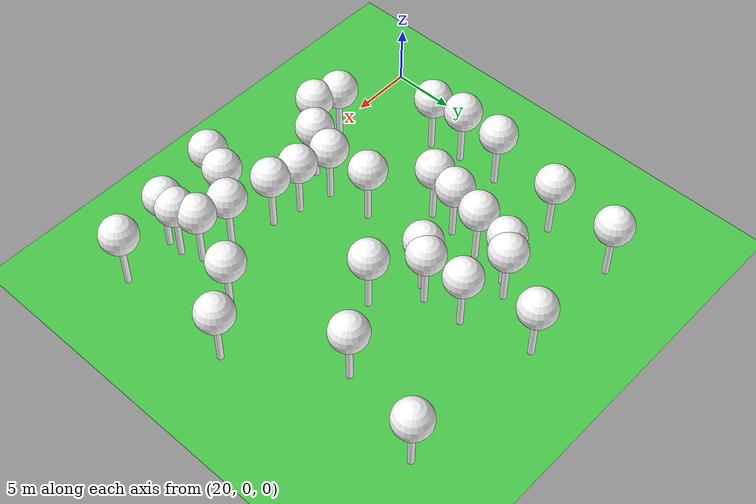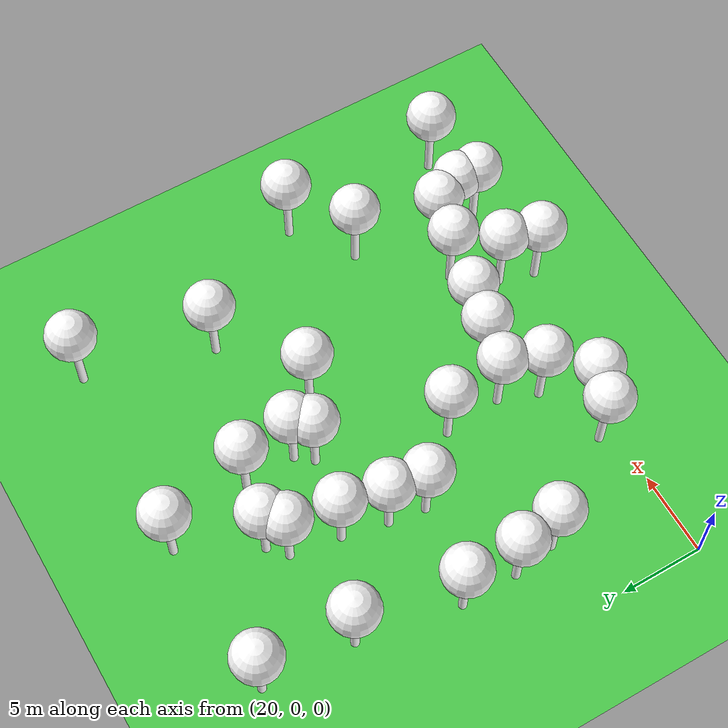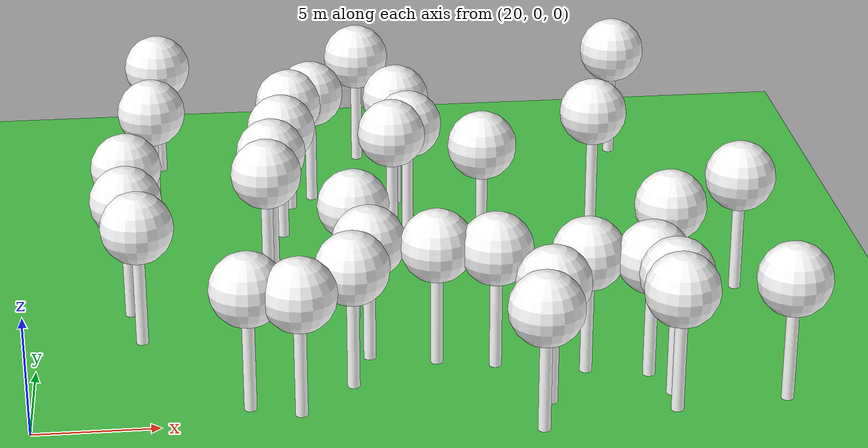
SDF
<sdf version="1.8">
 <world name="forest_world">
  <model name="tree_simple499">
   <static>1</static>
   <link name="link">
    <pose>0 0 0.1 0 -0 0</pose>
    <collision name="collision_trunk">
     <pose>0 0 2 0 -0 0</pose>
     <geometry><cylinder><radius>0.25</radius><length>4</length></cylinder></geometry>
    </collision>
    <collision name="collision_treetop">
     <pose>0 0 5.2 0 -0 0</pose>
     <geometry><sphere><radius>1.5</radius></sphere></geometry>
    </collision>
    <visual name="trunk_499">
     <pose>0 0 2 0 -0 0</pose>
     <geometry><cylinder><radius>0.25</radius><length>4</length></cylinder></geometry>
     <material>
      <ambient>0.5 0.5 0.5 1</ambient>
      <diffuse>1.0 1.0 1.0 1</diffuse>
      <specular>0.0 0.0 0.0 1</specular>
      <pbr>
       <metal>
        <albedo_map>file://textures/tree_simple_trunk.jpg</albedo_map>
        <metalness>0.0</metalness>
        <roughness>0.8</roughness>
       </metal>
      </pbr>
     </material>
    </visual>
    <visual name="treetop_499">
     <pose>0 0 5.2 0 -0 0</pose>
     <geometry><sphere><radius>1.5</radius></sphere></geometry>
     <material>
      <ambient>0.5 0.5 0.5 1</ambient>
      <diffuse>1.0 1.0 1.0 1</diffuse>
      <specular>0.0 0.0 0.0 1</specular>
      <pbr>
       <metal>
        <albedo_map>file://textures/tree_simple_treetop.jpg</albedo_map>
        <metalness>0.0</metalness>
        <roughness>0.9</roughness>
       </metal>
      </pbr>
     </material>
    </visual>
   </link>
   <pose>49.5772894431 -0.301033806291 0 0 -0 0</pose>
  </model>
  <model name="tree_simple490">
   <static>1</static>
   <link name="link">
    <pose>0 0 0.1 0 -0 0</pose>
    <collision name="collision_trunk">
     <pose>0 0 2 0 -0 0</pose>
     <geometry><cylinder><radius>0.25</radius><length>4</length></cylinder></geometry>
    </collision>
    <collision name="collision_treetop">
     <pose>0 0 5.2 0 -0 0</pose>
     <geometry><sphere><radius>1.5</radius></sphere></geometry>
    </collision>
    <visual name="trunk_490">
     <pose>0 0 2 0 -0 0</pose>
     <geometry><cylinder><radius>0.25</radius><length>4</length></cylinder></geometry>
     <material>
      <ambient>0.5 0.5 0.5 1</ambient>
      <diffuse>1.0 1.0 1.0 1</diffuse>
      <specular>0.0 0.0 0.0 1</specular>
      <pbr>
       <metal>
        <albedo_map>file://textures/tree_simple_trunk.jpg</albedo_map>
        <metalness>0.0</metalness>
        <roughness>0.8</roughness>
       </metal>
      </pbr>
     </material>
    </visual>
    <visual name="treetop_490">
     <pose>0 0 5.2 0 -0 0</pose>
     <geometry><sphere><radius>1.5</radius></sphere></geometry>
     <material>
      <ambient>0.5 0.5 0.5 1</ambient>
      <diffuse>1.0 1.0 1.0 1</diffuse>
      <specular>0.0 0.0 0.0 1</specular>
      <pbr>
       <metal>
        <albedo_map>file://textures/tree_simple_treetop.jpg</albedo_map>
        <metalness>0.0</metalness>
        <roughness>0.9</roughness>
       </metal>
      </pbr>
     </material>
    </visual>
   </link>
   <pose>28.486302093 0.994684244644 0 0 -0 0</pose>
  </model>
  <model name="tree_simple487">
   <static>1</static>
   <link name="link">
    <pose>0 0 0.1 0 -0 0</pose>
    <collision name="collision_trunk">
     <pose>0 0 2 0 -0 0</pose>
     <geometry><cylinder><radius>0.25</radius><length>4</length></cylinder></geometry>
    </collision>
    <collision name="collision_treetop">
     <pose>0 0 5.2 0 -0 0</pose>
     <geometry><sphere><radius>1.5</radius></sphere></geometry>
    </collision>
    <visual name="trunk_487">
     <pose>0 0 2 0 -0 0</pose>
     <geometry><cylinder><radius>0.25</radius><length>4</length></cylinder></geometry>
     <material>
      <ambient>0.5 0.5 0.5 1</ambient>
      <diffuse>1.0 1.0 1.0 1</diffuse>
      <specular>0.0 0.0 0.0 1</specular>
      <pbr>
       <metal>
        <albedo_map>file://textures/tree_simple_trunk.jpg</albedo_map>
        <metalness>0.0</metalness>
        <roughness>0.8</roughness>
       </metal>
      </pbr>
     </material>
    </visual>
    <visual name="treetop_487">
     <pose>0 0 5.2 0 -0 0</pose>
     <geometry><sphere><radius>1.5</radius></sphere></geometry>
     <material>
      <ambient>0.5 0.5 0.5 1</ambient>
      <diffuse>1.0 1.0 1.0 1</diffuse>
      <specular>0.0 0.0 0.0 1</specular>
      <pbr>
       <metal>
        <albedo_map>file://textures/tree_simple_treetop.jpg</albedo_map>
        <metalness>0.0</metalness>
        <roughness>0.9</roughness>
       </metal>
      </pbr>
     </material>
    </visual>
   </link>
   <pose>33.1280168764 8.35331864597 0 0 -0 0</pose>
  </model>
  <model name="tree_simple485">
   <static>1</static>
   <link name="link">
    <pose>0 0 0.1 0 -0 0</pose>
    <collision name="collision_trunk">
     <pose>0 0 2 0 -0 0</pose>
     <geometry><cylinder><radius>0.25</radius><length>4</length></cylinder></geometry>
    </collision>
    <collision name="collision_treetop">
     <pose>0 0 5.2 0 -0 0</pose>
     <geometry><sphere><radius>1.5</radius></sphere></geometry>
    </collision>
    <visual name="trunk_485">
     <pose>0 0 2 0 -0 0</pose>
     <geometry><cylinder><radius>0.25</radius><length>4</length></cylinder></geometry>
     <material>
      <ambient>0.5 0.5 0.5 1</ambient>
      <diffuse>1.0 1.0 1.0 1</diffuse>
      <specular>0.0 0.0 0.0 1</specular>
      <pbr>
       <metal>
        <albedo_map>file://textures/tree_simple_trunk.jpg</albedo_map>
        <metalness>0.0</metalness>
        <roughness>0.8</roughness>
       </metal>
      </pbr>
     </material>
    </visual>
    <visual name="treetop_485">
     <pose>0 0 5.2 0 -0 0</pose>
     <geometry><sphere><radius>1.5</radius></sphere></geometry>
     <material>
      <ambient>0.5 0.5 0.5 1</ambient>
      <diffuse>1.0 1.0 1.0 1</diffuse>
      <specular>0.0 0.0 0.0 1</specular>
      <pbr>
       <metal>
        <albedo_map>file://textures/tree_simple_treetop.jpg</albedo_map>
        <metalness>0.0</metalness>
        <roughness>0.9</roughness>
       </metal>
      </pbr>
     </material>
    </visual>
   </link>
   <pose>38.4673421664 3.60529435805 0 0 -0 0</pose>
  </model>
  <model name="tree_simple387">
   <static>1</static>
   <link name="link">
    <pose>0 0 0.1 0 -0 0</pose>
    <collision name="collision_trunk">
     <pose>0 0 2 0 -0 0</pose>
     <geometry><cylinder><radius>0.25</radius><length>4</length></cylinder></geometry>
    </collision>
    <collision name="collision_treetop">
     <pose>0 0 5.2 0 -0 0</pose>
     <geometry><sphere><radius>1.5</radius></sphere></geometry>
    </collision>
    <visual name="trunk_387">
     <pose>0 0 2 0 -0 0</pose>
     <geometry><cylinder><radius>0.25</radius><length>4</length></cylinder></geometry>
     <material>
      <ambient>0.5 0.5 0.5 1</ambient>
      <diffuse>1.0 1.0 1.0 1</diffuse>
      <specular>0.0 0.0 0.0 1</specular>
      <pbr>
       <metal>
        <albedo_map>file://textures/tree_simple_trunk.jpg</albedo_map>
        <metalness>0.0</metalness>
        <roughness>0.8</roughness>
       </metal>
      </pbr>
     </material>
    </visual>
    <visual name="treetop_387">
     <pose>0 0 5.2 0 -0 0</pose>
     <geometry><sphere><radius>1.5</radius></sphere></geometry>
     <material>
      <ambient>0.5 0.5 0.5 1</ambient>
      <diffuse>1.0 1.0 1.0 1</diffuse>
      <specular>0.0 0.0 0.0 1</specular>
      <pbr>
       <metal>
        <albedo_map>file://textures/tree_simple_treetop.jpg</albedo_map>
        <metalness>0.0</metalness>
        <roughness>0.9</roughness>
       </metal>
      </pbr>
     </material>
    </visual>
   </link>
   <pose>25.1584680938 24.780687948 0 0 -0 0</pose>
  </model>
  <model name="tree_simple378">
   <static>1</static>
   <link name="link">
    <pose>0 0 0.1 0 -0 0</pose>
    <collision name="collision_trunk">
     <pose>0 0 2 0 -0 0</pose>
     <geometry><cylinder><radius>0.25</radius><length>4</length></cylinder></geometry>
    </collision>
    <collision name="collision_treetop">
     <pose>0 0 5.2 0 -0 0</pose>
     <geometry><sphere><radius>1.5</radius></sphere></geometry>
    </collision>
    <visual name="trunk_378">
     <pose>0 0 2 0 -0 0</pose>
     <geometry><cylinder><radius>0.25</radius><length>4</length></cylinder></geometry>
     <material>
      <ambient>0.5 0.5 0.5 1</ambient>
      <diffuse>1.0 1.0 1.0 1</diffuse>
      <specular>0.0 0.0 0.0 1</specular>
      <pbr>
       <metal>
        <albedo_map>file://textures/tree_simple_trunk.jpg</albedo_map>
        <metalness>0.0</metalness>
        <roughness>0.8</roughness>
       </metal>
      </pbr>
     </material>
    </visual>
    <visual name="treetop_378">
     <pose>0 0 5.2 0 -0 0</pose>
     <geometry><sphere><radius>1.5</radius></sphere></geometry>
     <material>
      <ambient>0.5 0.5 0.5 1</ambient>
      <diffuse>1.0 1.0 1.0 1</diffuse>
      <specular>0.0 0.0 0.0 1</specular>
      <pbr>
       <metal>
        <albedo_map>file://textures/tree_simple_treetop.jpg</albedo_map>
        <metalness>0.0</metalness>
        <roughness>0.9</roughness>
       </metal>
      </pbr>
     </material>
    </visual>
   </link>
   <pose>45.079812121 -0.754391736344 0 0 -0 0</pose>
  </model>
  <model name="tree_simple363">
   <static>1</static>
   <link name="link">
    <pose>0 0 0.1 0 -0 0</pose>
    <collision name="collision_trunk">
     <pose>0 0 2 0 -0 0</pose>
     <geometry><cylinder><radius>0.25</radius><length>4</length></cylinder></geometry>
    </collision>
    <collision name="collision_treetop">
     <pose>0 0 5.2 0 -0 0</pose>
     <geometry><sphere><radius>1.5</radius></sphere></geometry>
    </collision>
    <visual name="trunk_363">
     <pose>0 0 2 0 -0 0</pose>
     <geometry><cylinder><radius>0.25</radius><length>4</length></cylinder></geometry>
     <material>
      <ambient>0.5 0.5 0.5 1</ambient>
      <diffuse>1.0 1.0 1.0 1</diffuse>
      <specular>0.0 0.0 0.0 1</specular>
      <pbr>
       <metal>
        <albedo_map>file://textures/tree_simple_trunk.jpg</albedo_map>
        <metalness>0.0</metalness>
        <roughness>0.8</roughness>
       </metal>
      </pbr>
     </material>
    </visual>
    <visual name="treetop_363">
     <pose>0 0 5.2 0 -0 0</pose>
     <geometry><sphere><radius>1.5</radius></sphere></geometry>
     <material>
      <ambient>0.5 0.5 0.5 1</ambient>
      <diffuse>1.0 1.0 1.0 1</diffuse>
      <specular>0.0 0.0 0.0 1</specular>
      <pbr>
       <metal>
        <albedo_map>file://textures/tree_simple_treetop.jpg</albedo_map>
        <metalness>0.0</metalness>
        <roughness>0.9</roughness>
       </metal>
      </pbr>
     </material>
    </visual>
   </link>
   <pose>45.144398785 0.58220424318 0 0 -0 0</pose>
  </model>
  <model name="tree_simple354">
   <static>1</static>
   <link name="link">
    <pose>0 0 0.1 0 -0 0</pose>
    <collision name="collision_trunk">
     <pose>0 0 2 0 -0 0</pose>
     <geometry><cylinder><radius>0.25</radius><length>4</length></cylinder></geometry>
    </collision>
    <collision name="collision_treetop">
     <pose>0 0 5.2 0 -0 0</pose>
     <geometry><sphere><radius>1.5</radius></sphere></geometry>
    </collision>
    <visual name="trunk_354">
     <pose>0 0 2 0 -0 0</pose>
     <geometry><cylinder><radius>0.25</radius><length>4</length></cylinder></geometry>
     <material>
      <ambient>0.5 0.5 0.5 1</ambient>
      <diffuse>1.0 1.0 1.0 1</diffuse>
      <specular>0.0 0.0 0.0 1</specular>
      <pbr>
       <metal>
        <albedo_map>file://textures/tree_simple_trunk.jpg</albedo_map>
        <metalness>0.0</metalness>
        <roughness>0.8</roughness>
       </metal>
      </pbr>
     </material>
    </visual>
    <visual name="treetop_354">
     <pose>0 0 5.2 0 -0 0</pose>
     <geometry><sphere><radius>1.5</radius></sphere></geometry>
     <material>
      <ambient>0.5 0.5 0.5 1</ambient>
      <diffuse>1.0 1.0 1.0 1</diffuse>
      <specular>0.0 0.0 0.0 1</specular>
      <pbr>
       <metal>
        <albedo_map>file://textures/tree_simple_treetop.jpg</albedo_map>
        <metalness>0.0</metalness>
        <roughness>0.9</roughness>
       </metal>
      </pbr>
     </material>
    </visual>
   </link>
   <pose>32.6407591413 2.42607799047 0 0 -0 0</pose>
  </model>
  <model name="tree_simple335">
   <static>1</static>
   <link name="link">
    <pose>0 0 0.1 0 -0 0</pose>
    <collision name="collision_trunk">
     <pose>0 0 2 0 -0 0</pose>
     <geometry><cylinder><radius>0.25</radius><length>4</length></cylinder></geometry>
    </collision>
    <collision name="collision_treetop">
     <pose>0 0 5.2 0 -0 0</pose>
     <geometry><sphere><radius>1.5</radius></sphere></geometry>
    </collision>
    <visual name="trunk_335">
     <pose>0 0 2 0 -0 0</pose>
     <geometry><cylinder><radius>0.25</radius><length>4</length></cylinder></geometry>
     <material>
      <ambient>0.5 0.5 0.5 1</ambient>
      <diffuse>1.0 1.0 1.0 1</diffuse>
      <specular>0.0 0.0 0.0 1</specular>
      <pbr>
       <metal>
        <albedo_map>file://textures/tree_simple_trunk.jpg</albedo_map>
        <metalness>0.0</metalness>
        <roughness>0.8</roughness>
       </metal>
      </pbr>
     </material>
    </visual>
    <visual name="treetop_335">
     <pose>0 0 5.2 0 -0 0</pose>
     <geometry><sphere><radius>1.5</radius></sphere></geometry>
     <material>
      <ambient>0.5 0.5 0.5 1</ambient>
      <diffuse>1.0 1.0 1.0 1</diffuse>
      <specular>0.0 0.0 0.0 1</specular>
      <pbr>
       <metal>
        <albedo_map>file://textures/tree_simple_treetop.jpg</albedo_map>
        <metalness>0.0</metalness>
        <roughness>0.9</roughness>
       </metal>
      </pbr>
     </material>
    </visual>
   </link>
   <pose>34.5368026381 25.2759033923 0 0 -0 0</pose>
  </model>
  <model name="tree_simple297">
   <static>1</static>
   <link name="link">
    <pose>0 0 0.1 0 -0 0</pose>
    <collision name="collision_trunk">
     <pose>0 0 2 0 -0 0</pose>
     <geometry><cylinder><radius>0.25</radius><length>4</length></cylinder></geometry>
    </collision>
    <collision name="collision_treetop">
     <pose>0 0 5.2 0 -0 0</pose>
     <geometry><sphere><radius>1.5</radius></sphere></geometry>
    </collision>
    <visual name="trunk_297">
     <pose>0 0 2 0 -0 0</pose>
     <geometry><cylinder><radius>0.25</radius><length>4</length></cylinder></geometry>
     <material>
      <ambient>0.5 0.5 0.5 1</ambient>
      <diffuse>1.0 1.0 1.0 1</diffuse>
      <specular>0.0 0.0 0.0 1</specular>
      <pbr>
       <metal>
        <albedo_map>file://textures/tree_simple_trunk.jpg</albedo_map>
        <metalness>0.0</metalness>
        <roughness>0.8</roughness>
       </metal>
      </pbr>
     </material>
    </visual>
    <visual name="treetop_297">
     <pose>0 0 5.2 0 -0 0</pose>
     <geometry><sphere><radius>1.5</radius></sphere></geometry>
     <material>
      <ambient>0.5 0.5 0.5 1</ambient>
      <diffuse>1.0 1.0 1.0 1</diffuse>
      <specular>0.0 0.0 0.0 1</specular>
      <pbr>
       <metal>
        <albedo_map>file://textures/tree_simple_treetop.jpg</albedo_map>
        <metalness>0.0</metalness>
        <roughness>0.9</roughness>
       </metal>
      </pbr>
     </material>
    </visual>
   </link>
   <pose>30.5775161842 16.8175844191 0 0 -0 0</pose>
  </model>
  <model name="tree_simple296">
   <static>1</static>
   <link name="link">
    <pose>0 0 0.1 0 -0 0</pose>
    <collision name="collision_trunk">
     <pose>0 0 2 0 -0 0</pose>
     <geometry><cylinder><radius>0.25</radius><length>4</length></cylinder></geometry>
    </collision>
    <collision name="collision_treetop">
     <pose>0 0 5.2 0 -0 0</pose>
     <geometry><sphere><radius>1.5</radius></sphere></geometry>
    </collision>
    <visual name="trunk_296">
     <pose>0 0 2 0 -0 0</pose>
     <geometry><cylinder><radius>0.25</radius><length>4</length></cylinder></geometry>
     <material>
      <ambient>0.5 0.5 0.5 1</ambient>
      <diffuse>1.0 1.0 1.0 1</diffuse>
      <specular>0.0 0.0 0.0 1</specular>
      <pbr>
       <metal>
        <albedo_map>file://textures/tree_simple_trunk.jpg</albedo_map>
        <metalness>0.0</metalness>
        <roughness>0.8</roughness>
       </metal>
      </pbr>
     </material>
    </visual>
    <visual name="treetop_296">
     <pose>0 0 5.2 0 -0 0</pose>
     <geometry><sphere><radius>1.5</radius></sphere></geometry>
     <material>
      <ambient>0.5 0.5 0.5 1</ambient>
      <diffuse>1.0 1.0 1.0 1</diffuse>
      <specular>0.0 0.0 0.0 1</specular>
      <pbr>
       <metal>
        <albedo_map>file://textures/tree_simple_treetop.jpg</albedo_map>
        <metalness>0.0</metalness>
        <roughness>0.9</roughness>
       </metal>
      </pbr>
     </material>
    </visual>
   </link>
   <pose>44.6267245304 17.3019041373 0 0 -0 0</pose>
  </model>
  <model name="tree_simple283">
   <static>1</static>
   <link name="link">
    <pose>0 0 0.1 0 -0 0</pose>
    <collision name="collision_trunk">
     <pose>0 0 2 0 -0 0</pose>
     <geometry><cylinder><radius>0.25</radius><length>4</length></cylinder></geometry>
    </collision>
    <collision name="collision_treetop">
     <pose>0 0 5.2 0 -0 0</pose>
     <geometry><sphere><radius>1.5</radius></sphere></geometry>
    </collision>
    <visual name="trunk_283">
     <pose>0 0 2 0 -0 0</pose>
     <geometry><cylinder><radius>0.25</radius><length>4</length></cylinder></geometry>
     <material>
      <ambient>0.5 0.5 0.5 1</ambient>
      <diffuse>1.0 1.0 1.0 1</diffuse>
      <specular>0.0 0.0 0.0 1</specular>
      <pbr>
       <metal>
        <albedo_map>file://textures/tree_simple_trunk.jpg</albedo_map>
        <metalness>0.0</metalness>
        <roughness>0.8</roughness>
       </metal>
      </pbr>
     </material>
    </visual>
    <visual name="treetop_283">
     <pose>0 0 5.2 0 -0 0</pose>
     <geometry><sphere><radius>1.5</radius></sphere></geometry>
     <material>
      <ambient>0.5 0.5 0.5 1</ambient>
      <diffuse>1.0 1.0 1.0 1</diffuse>
      <specular>0.0 0.0 0.0 1</specular>
      <pbr>
       <metal>
        <albedo_map>file://textures/tree_simple_treetop.jpg</albedo_map>
        <metalness>0.0</metalness>
        <roughness>0.9</roughness>
       </metal>
      </pbr>
     </material>
    </visual>
   </link>
   <pose>39.1815186035 14.0237047255 0 0 -0 0</pose>
  </model>
  <model name="tree_simple277">
   <static>1</static>
   <link name="link">
    <pose>0 0 0.1 0 -0 0</pose>
    <collision name="collision_trunk">
     <pose>0 0 2 0 -0 0</pose>
     <geometry><cylinder><radius>0.25</radius><length>4</length></cylinder></geometry>
    </collision>
    <collision name="collision_treetop">
     <pose>0 0 5.2 0 -0 0</pose>
     <geometry><sphere><radius>1.5</radius></sphere></geometry>
    </collision>
    <visual name="trunk_277">
     <pose>0 0 2 0 -0 0</pose>
     <geometry><cylinder><radius>0.25</radius><length>4</length></cylinder></geometry>
     <material>
      <ambient>0.5 0.5 0.5 1</ambient>
      <diffuse>1.0 1.0 1.0 1</diffuse>
      <specular>0.0 0.0 0.0 1</specular>
      <pbr>
       <metal>
        <albedo_map>file://textures/tree_simple_trunk.jpg</albedo_map>
        <metalness>0.0</metalness>
        <roughness>0.8</roughness>
       </metal>
      </pbr>
     </material>
    </visual>
    <visual name="treetop_277">
     <pose>0 0 5.2 0 -0 0</pose>
     <geometry><sphere><radius>1.5</radius></sphere></geometry>
     <material>
      <ambient>0.5 0.5 0.5 1</ambient>
      <diffuse>1.0 1.0 1.0 1</diffuse>
      <specular>0.0 0.0 0.0 1</specular>
      <pbr>
       <metal>
        <albedo_map>file://textures/tree_simple_treetop.jpg</albedo_map>
        <metalness>0.0</metalness>
        <roughness>0.9</roughness>
       </metal>
      </pbr>
     </material>
    </visual>
   </link>
   <pose>29.6986775877 11.8803123921 0 0 -0 0</pose>
  </model>
  <model name="tree_simple274">
   <static>1</static>
   <link name="link">
    <pose>0 0 0.1 0 -0 0</pose>
    <collision name="collision_trunk">
     <pose>0 0 2 0 -0 0</pose>
     <geometry><cylinder><radius>0.25</radius><length>4</length></cylinder></geometry>
    </collision>
    <collision name="collision_treetop">
     <pose>0 0 5.2 0 -0 0</pose>
     <geometry><sphere><radius>1.5</radius></sphere></geometry>
    </collision>
    <visual name="trunk_274">
     <pose>0 0 2 0 -0 0</pose>
     <geometry><cylinder><radius>0.25</radius><length>4</length></cylinder></geometry>
     <material>
      <ambient>0.5 0.5 0.5 1</ambient>
      <diffuse>1.0 1.0 1.0 1</diffuse>
      <specular>0.0 0.0 0.0 1</specular>
      <pbr>
       <metal>
        <albedo_map>file://textures/tree_simple_trunk.jpg</albedo_map>
        <metalness>0.0</metalness>
        <roughness>0.8</roughness>
       </metal>
      </pbr>
     </material>
    </visual>
    <visual name="treetop_274">
     <pose>0 0 5.2 0 -0 0</pose>
     <geometry><sphere><radius>1.5</radius></sphere></geometry>
     <material>
      <ambient>0.5 0.5 0.5 1</ambient>
      <diffuse>1.0 1.0 1.0 1</diffuse>
      <specular>0.0 0.0 0.0 1</specular>
      <pbr>
       <metal>
        <albedo_map>file://textures/tree_simple_treetop.jpg</albedo_map>
        <metalness>0.0</metalness>
        <roughness>0.9</roughness>
       </metal>
      </pbr>
     </material>
    </visual>
   </link>
   <pose>36.1444858675 4.12221392714 0 0 -0 0</pose>
  </model>
  <model name="tree_simple270">
   <static>1</static>
   <link name="link">
    <pose>0 0 0.1 0 -0 0</pose>
    <collision name="collision_trunk">
     <pose>0 0 2 0 -0 0</pose>
     <geometry><cylinder><radius>0.25</radius><length>4</length></cylinder></geometry>
    </collision>
    <collision name="collision_treetop">
     <pose>0 0 5.2 0 -0 0</pose>
     <geometry><sphere><radius>1.5</radius></sphere></geometry>
    </collision>
    <visual name="trunk_270">
     <pose>0 0 2 0 -0 0</pose>
     <geometry><cylinder><radius>0.25</radius><length>4</length></cylinder></geometry>
     <material>
      <ambient>0.5 0.5 0.5 1</ambient>
      <diffuse>1.0 1.0 1.0 1</diffuse>
      <specular>0.0 0.0 0.0 1</specular>
      <pbr>
       <metal>
        <albedo_map>file://textures/tree_simple_trunk.jpg</albedo_map>
        <metalness>0.0</metalness>
        <roughness>0.8</roughness>
       </metal>
      </pbr>
     </material>
    </visual>
    <visual name="treetop_270">
     <pose>0 0 5.2 0 -0 0</pose>
     <geometry><sphere><radius>1.5</radius></sphere></geometry>
     <material>
      <ambient>0.5 0.5 0.5 1</ambient>
      <diffuse>1.0 1.0 1.0 1</diffuse>
      <specular>0.0 0.0 0.0 1</specular>
      <pbr>
       <metal>
        <albedo_map>file://textures/tree_simple_treetop.jpg</albedo_map>
        <metalness>0.0</metalness>
        <roughness>0.9</roughness>
       </metal>
      </pbr>
     </material>
    </visual>
   </link>
   <pose>36.1848743211 16.7262379366 0 0 -0 0</pose>
  </model>
  <model name="tree_simple266">
   <static>1</static>
   <link name="link">
    <pose>0 0 0.1 0 -0 0</pose>
    <collision name="collision_trunk">
     <pose>0 0 2 0 -0 0</pose>
     <geometry><cylinder><radius>0.25</radius><length>4</length></cylinder></geometry>
    </collision>
    <collision name="collision_treetop">
     <pose>0 0 5.2 0 -0 0</pose>
     <geometry><sphere><radius>1.5</radius></sphere></geometry>
    </collision>
    <visual name="trunk_266">
     <pose>0 0 2 0 -0 0</pose>
     <geometry><cylinder><radius>0.25</radius><length>4</length></cylinder></geometry>
     <material>
      <ambient>0.5 0.5 0.5 1</ambient>
      <diffuse>1.0 1.0 1.0 1</diffuse>
      <specular>0.0 0.0 0.0 1</specular>
      <pbr>
       <metal>
        <albedo_map>file://textures/tree_simple_trunk.jpg</albedo_map>
        <metalness>0.0</metalness>
        <roughness>0.8</roughness>
       </metal>
      </pbr>
     </material>
    </visual>
    <visual name="treetop_266">
     <pose>0 0 5.2 0 -0 0</pose>
     <geometry><sphere><radius>1.5</radius></sphere></geometry>
     <material>
      <ambient>0.5 0.5 0.5 1</ambient>
      <diffuse>1.0 1.0 1.0 1</diffuse>
      <specular>0.0 0.0 0.0 1</specular>
      <pbr>
       <metal>
        <albedo_map>file://textures/tree_simple_treetop.jpg</albedo_map>
        <metalness>0.0</metalness>
        <roughness>0.9</roughness>
       </metal>
      </pbr>
     </material>
    </visual>
   </link>
   <pose>24.8758321483 19.2237149963 0 0 -0 0</pose>
  </model>
  <model name="tree_simple242">
   <static>1</static>
   <link name="link">
    <pose>0 0 0.1 0 -0 0</pose>
    <collision name="collision_trunk">
     <pose>0 0 2 0 -0 0</pose>
     <geometry><cylinder><radius>0.25</radius><length>4</length></cylinder></geometry>
    </collision>
    <collision name="collision_treetop">
     <pose>0 0 5.2 0 -0 0</pose>
     <geometry><sphere><radius>1.5</radius></sphere></geometry>
    </collision>
    <visual name="trunk_242">
     <pose>0 0 2 0 -0 0</pose>
     <geometry><cylinder><radius>0.25</radius><length>4</length></cylinder></geometry>
     <material>
      <ambient>0.5 0.5 0.5 1</ambient>
      <diffuse>1.0 1.0 1.0 1</diffuse>
      <specular>0.0 0.0 0.0 1</specular>
      <pbr>
       <metal>
        <albedo_map>file://textures/tree_simple_trunk.jpg</albedo_map>
        <metalness>0.0</metalness>
        <roughness>0.8</roughness>
       </metal>
      </pbr>
     </material>
    </visual>
    <visual name="treetop_242">
     <pose>0 0 5.2 0 -0 0</pose>
     <geometry><sphere><radius>1.5</radius></sphere></geometry>
     <material>
      <ambient>0.5 0.5 0.5 1</ambient>
      <diffuse>1.0 1.0 1.0 1</diffuse>
      <specular>0.0 0.0 0.0 1</specular>
      <pbr>
       <metal>
        <albedo_map>file://textures/tree_simple_treetop.jpg</albedo_map>
        <metalness>0.0</metalness>
        <roughness>0.9</roughness>
       </metal>
      </pbr>
     </material>
    </visual>
   </link>
   <pose>23.8093795921 9.61974989159 0 0 -0 0</pose>
  </model>
  <model name="tree_simple237">
   <static>1</static>
   <link name="link">
    <pose>0 0 0.1 0 -0 0</pose>
    <collision name="collision_trunk">
     <pose>0 0 2 0 -0 0</pose>
     <geometry><cylinder><radius>0.25</radius><length>4</length></cylinder></geometry>
    </collision>
    <collision name="collision_treetop">
     <pose>0 0 5.2 0 -0 0</pose>
     <geometry><sphere><radius>1.5</radius></sphere></geometry>
    </collision>
    <visual name="trunk_237">
     <pose>0 0 2 0 -0 0</pose>
     <geometry><cylinder><radius>0.25</radius><length>4</length></cylinder></geometry>
     <material>
      <ambient>0.5 0.5 0.5 1</ambient>
      <diffuse>1.0 1.0 1.0 1</diffuse>
      <specular>0.0 0.0 0.0 1</specular>
      <pbr>
       <metal>
        <albedo_map>file://textures/tree_simple_trunk.jpg</albedo_map>
        <metalness>0.0</metalness>
        <roughness>0.8</roughness>
       </metal>
      </pbr>
     </material>
    </visual>
    <visual name="treetop_237">
     <pose>0 0 5.2 0 -0 0</pose>
     <geometry><sphere><radius>1.5</radius></sphere></geometry>
     <material>
      <ambient>0.5 0.5 0.5 1</ambient>
      <diffuse>1.0 1.0 1.0 1</diffuse>
      <specular>0.0 0.0 0.0 1</specular>
      <pbr>
       <metal>
        <albedo_map>file://textures/tree_simple_treetop.jpg</albedo_map>
        <metalness>0.0</metalness>
        <roughness>0.9</roughness>
       </metal>
      </pbr>
     </material>
    </visual>
   </link>
   <pose>23.796461239 13.0760295483 0 0 -0 0</pose>
  </model>
  <model name="tree_simple219">
   <static>1</static>
   <link name="link">
    <pose>0 0 0.1 0 -0 0</pose>
    <collision name="collision_trunk">
     <pose>0 0 2 0 -0 0</pose>
     <geometry><cylinder><radius>0.25</radius><length>4</length></cylinder></geometry>
    </collision>
    <collision name="collision_treetop">
     <pose>0 0 5.2 0 -0 0</pose>
     <geometry><sphere><radius>1.5</radius></sphere></geometry>
    </collision>
    <visual name="trunk_219">
     <pose>0 0 2 0 -0 0</pose>
     <geometry><cylinder><radius>0.25</radius><length>4</length></cylinder></geometry>
     <material>
      <ambient>0.5 0.5 0.5 1</ambient>
      <diffuse>1.0 1.0 1.0 1</diffuse>
      <specular>0.0 0.0 0.0 1</specular>
      <pbr>
       <metal>
        <albedo_map>file://textures/tree_simple_trunk.jpg</albedo_map>
        <metalness>0.0</metalness>
        <roughness>0.8</roughness>
       </metal>
      </pbr>
     </material>
    </visual>
    <visual name="treetop_219">
     <pose>0 0 5.2 0 -0 0</pose>
     <geometry><sphere><radius>1.5</radius></sphere></geometry>
     <material>
      <ambient>0.5 0.5 0.5 1</ambient>
      <diffuse>1.0 1.0 1.0 1</diffuse>
      <specular>0.0 0.0 0.0 1</specular>
      <pbr>
       <metal>
        <albedo_map>file://textures/tree_simple_treetop.jpg</albedo_map>
        <metalness>0.0</metalness>
        <roughness>0.9</roughness>
       </metal>
      </pbr>
     </material>
    </visual>
   </link>
   <pose>32.089947678 20.7584358719 0 0 -0 0</pose>
  </model>
  <model name="tree_simple216">
   <static>1</static>
   <link name="link">
    <pose>0 0 0.1 0 -0 0</pose>
    <collision name="collision_trunk">
     <pose>0 0 2 0 -0 0</pose>
     <geometry><cylinder><radius>0.25</radius><length>4</length></cylinder></geometry>
    </collision>
    <collision name="collision_treetop">
     <pose>0 0 5.2 0 -0 0</pose>
     <geometry><sphere><radius>1.5</radius></sphere></geometry>
    </collision>
    <visual name="trunk_216">
     <pose>0 0 2 0 -0 0</pose>
     <geometry><cylinder><radius>0.25</radius><length>4</length></cylinder></geometry>
     <material>
      <ambient>0.5 0.5 0.5 1</ambient>
      <diffuse>1.0 1.0 1.0 1</diffuse>
      <specular>0.0 0.0 0.0 1</specular>
      <pbr>
       <metal>
        <albedo_map>file://textures/tree_simple_trunk.jpg</albedo_map>
        <metalness>0.0</metalness>
        <roughness>0.8</roughness>
       </metal>
      </pbr>
     </material>
    </visual>
    <visual name="treetop_216">
     <pose>0 0 5.2 0 -0 0</pose>
     <geometry><sphere><radius>1.5</radius></sphere></geometry>
     <material>
      <ambient>0.5 0.5 0.5 1</ambient>
      <diffuse>1.0 1.0 1.0 1</diffuse>
      <specular>0.0 0.0 0.0 1</specular>
      <pbr>
       <metal>
        <albedo_map>file://textures/tree_simple_treetop.jpg</albedo_map>
        <metalness>0.0</metalness>
        <roughness>0.9</roughness>
       </metal>
      </pbr>
     </material>
    </visual>
   </link>
   <pose>46.7848412988 24.905742282 0 0 -0 0</pose>
  </model>
  <model name="tree_simple188">
   <static>1</static>
   <link name="link">
    <pose>0 0 0.1 0 -0 0</pose>
    <collision name="collision_trunk">
     <pose>0 0 2 0 -0 0</pose>
     <geometry><cylinder><radius>0.25</radius><length>4</length></cylinder></geometry>
    </collision>
    <collision name="collision_treetop">
     <pose>0 0 5.2 0 -0 0</pose>
     <geometry><sphere><radius>1.5</radius></sphere></geometry>
    </collision>
    <visual name="trunk_188">
     <pose>0 0 2 0 -0 0</pose>
     <geometry><cylinder><radius>0.25</radius><length>4</length></cylinder></geometry>
     <material>
      <ambient>0.5 0.5 0.5 1</ambient>
      <diffuse>1.0 1.0 1.0 1</diffuse>
      <specular>0.0 0.0 0.0 1</specular>
      <pbr>
       <metal>
        <albedo_map>file://textures/tree_simple_trunk.jpg</albedo_map>
        <metalness>0.0</metalness>
        <roughness>0.8</roughness>
       </metal>
      </pbr>
     </material>
    </visual>
    <visual name="treetop_188">
     <pose>0 0 5.2 0 -0 0</pose>
     <geometry><sphere><radius>1.5</radius></sphere></geometry>
     <material>
      <ambient>0.5 0.5 0.5 1</ambient>
      <diffuse>1.0 1.0 1.0 1</diffuse>
      <specular>0.0 0.0 0.0 1</specular>
      <pbr>
       <metal>
        <albedo_map>file://textures/tree_simple_treetop.jpg</albedo_map>
        <metalness>0.0</metalness>
        <roughness>0.9</roughness>
       </metal>
      </pbr>
     </material>
    </visual>
   </link>
   <pose>31.0766060016 19.8231593676 0 0 -0 0</pose>
  </model>
  <model name="tree_simple151">
   <static>1</static>
   <link name="link">
    <pose>0 0 0.1 0 -0 0</pose>
    <collision name="collision_trunk">
     <pose>0 0 2 0 -0 0</pose>
     <geometry><cylinder><radius>0.25</radius><length>4</length></cylinder></geometry>
    </collision>
    <collision name="collision_treetop">
     <pose>0 0 5.2 0 -0 0</pose>
     <geometry><sphere><radius>1.5</radius></sphere></geometry>
    </collision>
    <visual name="trunk_151">
     <pose>0 0 2 0 -0 0</pose>
     <geometry><cylinder><radius>0.25</radius><length>4</length></cylinder></geometry>
     <material>
      <ambient>0.5 0.5 0.5 1</ambient>
      <diffuse>1.0 1.0 1.0 1</diffuse>
      <specular>0.0 0.0 0.0 1</specular>
      <pbr>
       <metal>
        <albedo_map>file://textures/tree_simple_trunk.jpg</albedo_map>
        <metalness>0.0</metalness>
        <roughness>0.8</roughness>
       </metal>
      </pbr>
     </material>
    </visual>
    <visual name="treetop_151">
     <pose>0 0 5.2 0 -0 0</pose>
     <geometry><sphere><radius>1.5</radius></sphere></geometry>
     <material>
      <ambient>0.5 0.5 0.5 1</ambient>
      <diffuse>1.0 1.0 1.0 1</diffuse>
      <specular>0.0 0.0 0.0 1</specular>
      <pbr>
       <metal>
        <albedo_map>file://textures/tree_simple_treetop.jpg</albedo_map>
        <metalness>0.0</metalness>
        <roughness>0.9</roughness>
       </metal>
      </pbr>
     </material>
    </visual>
   </link>
   <pose>44.4996407391 2.22143393779 0 0 -0 0</pose>
  </model>
  <model name="tree_simple147">
   <static>1</static>
   <link name="link">
    <pose>0 0 0.1 0 -0 0</pose>
    <collision name="collision_trunk">
     <pose>0 0 2 0 -0 0</pose>
     <geometry><cylinder><radius>0.25</radius><length>4</length></cylinder></geometry>
    </collision>
    <collision name="collision_treetop">
     <pose>0 0 5.2 0 -0 0</pose>
     <geometry><sphere><radius>1.5</radius></sphere></geometry>
    </collision>
    <visual name="trunk_147">
     <pose>0 0 2 0 -0 0</pose>
     <geometry><cylinder><radius>0.25</radius><length>4</length></cylinder></geometry>
     <material>
      <ambient>0.5 0.5 0.5 1</ambient>
      <diffuse>1.0 1.0 1.0 1</diffuse>
      <specular>0.0 0.0 0.0 1</specular>
      <pbr>
       <metal>
        <albedo_map>file://textures/tree_simple_trunk.jpg</albedo_map>
        <metalness>0.0</metalness>
        <roughness>0.8</roughness>
       </metal>
      </pbr>
     </material>
    </visual>
    <visual name="treetop_147">
     <pose>0 0 5.2 0 -0 0</pose>
     <geometry><sphere><radius>1.5</radius></sphere></geometry>
     <material>
      <ambient>0.5 0.5 0.5 1</ambient>
      <diffuse>1.0 1.0 1.0 1</diffuse>
      <specular>0.0 0.0 0.0 1</specular>
      <pbr>
       <metal>
        <albedo_map>file://textures/tree_simple_treetop.jpg</albedo_map>
        <metalness>0.0</metalness>
        <roughness>0.9</roughness>
       </metal>
      </pbr>
     </material>
    </visual>
   </link>
   <pose>35.3937687519 15.7697149942 0 0 -0 0</pose>
  </model>
  <model name="tree_simple125">
   <static>1</static>
   <link name="link">
    <pose>0 0 0.1 0 -0 0</pose>
    <collision name="collision_trunk">
     <pose>0 0 2 0 -0 0</pose>
     <geometry><cylinder><radius>0.25</radius><length>4</length></cylinder></geometry>
    </collision>
    <collision name="collision_treetop">
     <pose>0 0 5.2 0 -0 0</pose>
     <geometry><sphere><radius>1.5</radius></sphere></geometry>
    </collision>
    <visual name="trunk_125">
     <pose>0 0 2 0 -0 0</pose>
     <geometry><cylinder><radius>0.25</radius><length>4</length></cylinder></geometry>
     <material>
      <ambient>0.5 0.5 0.5 1</ambient>
      <diffuse>1.0 1.0 1.0 1</diffuse>
      <specular>0.0 0.0 0.0 1</specular>
      <pbr>
       <metal>
        <albedo_map>file://textures/tree_simple_trunk.jpg</albedo_map>
        <metalness>0.0</metalness>
        <roughness>0.8</roughness>
       </metal>
      </pbr>
     </material>
    </visual>
    <visual name="treetop_125">
     <pose>0 0 5.2 0 -0 0</pose>
     <geometry><sphere><radius>1.5</radius></sphere></geometry>
     <material>
      <ambient>0.5 0.5 0.5 1</ambient>
      <diffuse>1.0 1.0 1.0 1</diffuse>
      <specular>0.0 0.0 0.0 1</specular>
      <pbr>
       <metal>
        <albedo_map>file://textures/tree_simple_treetop.jpg</albedo_map>
        <metalness>0.0</metalness>
        <roughness>0.9</roughness>
       </metal>
      </pbr>
     </material>
    </visual>
   </link>
   <pose>49.6376718654 9.60982885919 0 0 -0 0</pose>
  </model>
  <model name="tree_simple101">
   <static>1</static>
   <link name="link">
    <pose>0 0 0.1 0 -0 0</pose>
    <collision name="collision_trunk">
     <pose>0 0 2 0 -0 0</pose>
     <geometry><cylinder><radius>0.25</radius><length>4</length></cylinder></geometry>
    </collision>
    <collision name="collision_treetop">
     <pose>0 0 5.2 0 -0 0</pose>
     <geometry><sphere><radius>1.5</radius></sphere></geometry>
    </collision>
    <visual name="trunk_101">
     <pose>0 0 2 0 -0 0</pose>
     <geometry><cylinder><radius>0.25</radius><length>4</length></cylinder></geometry>
     <material>
      <ambient>0.5 0.5 0.5 1</ambient>
      <diffuse>1.0 1.0 1.0 1</diffuse>
      <specular>0.0 0.0 0.0 1</specular>
      <pbr>
       <metal>
        <albedo_map>file://textures/tree_simple_trunk.jpg</albedo_map>
        <metalness>0.0</metalness>
        <roughness>0.8</roughness>
       </metal>
      </pbr>
     </material>
    </visual>
    <visual name="treetop_101">
     <pose>0 0 5.2 0 -0 0</pose>
     <geometry><sphere><radius>1.5</radius></sphere></geometry>
     <material>
      <ambient>0.5 0.5 0.5 1</ambient>
      <diffuse>1.0 1.0 1.0 1</diffuse>
      <specular>0.0 0.0 0.0 1</specular>
      <pbr>
       <metal>
        <albedo_map>file://textures/tree_simple_treetop.jpg</albedo_map>
        <metalness>0.0</metalness>
        <roughness>0.9</roughness>
       </metal>
      </pbr>
     </material>
    </visual>
   </link>
   <pose>30.4497487196 0.325840967223 0 0 -0 0</pose>
  </model>
  <model name="tree_simple88">
   <static>1</static>
   <link name="link">
    <pose>0 0 0.1 0 -0 0</pose>
    <collision name="collision_trunk">
     <pose>0 0 2 0 -0 0</pose>
     <geometry><cylinder><radius>0.25</radius><length>4</length></cylinder></geometry>
    </collision>
    <collision name="collision_treetop">
     <pose>0 0 5.2 0 -0 0</pose>
     <geometry><sphere><radius>1.5</radius></sphere></geometry>
    </collision>
    <visual name="trunk_88">
     <pose>0 0 2 0 -0 0</pose>
     <geometry><cylinder><radius>0.25</radius><length>4</length></cylinder></geometry>
     <material>
      <ambient>0.5 0.5 0.5 1</ambient>
      <diffuse>1.0 1.0 1.0 1</diffuse>
      <specular>0.0 0.0 0.0 1</specular>
      <pbr>
       <metal>
        <albedo_map>file://textures/tree_simple_trunk.jpg</albedo_map>
        <metalness>0.0</metalness>
        <roughness>0.8</roughness>
       </metal>
      </pbr>
     </material>
    </visual>
    <visual name="treetop_88">
     <pose>0 0 5.2 0 -0 0</pose>
     <geometry><sphere><radius>1.5</radius></sphere></geometry>
     <material>
      <ambient>0.5 0.5 0.5 1</ambient>
      <diffuse>1.0 1.0 1.0 1</diffuse>
      <specular>0.0 0.0 0.0 1</specular>
      <pbr>
       <metal>
        <albedo_map>file://textures/tree_simple_treetop.jpg</albedo_map>
        <metalness>0.0</metalness>
        <roughness>0.9</roughness>
       </metal>
      </pbr>
     </material>
    </visual>
   </link>
   <pose>30.0100540879 14.1017102657 0 0 -0 0</pose>
  </model>
  <model name="tree_simple82">
   <static>1</static>
   <link name="link">
    <pose>0 0 0.1 0 -0 0</pose>
    <collision name="collision_trunk">
     <pose>0 0 2 0 -0 0</pose>
     <geometry><cylinder><radius>0.25</radius><length>4</length></cylinder></geometry>
    </collision>
    <collision name="collision_treetop">
     <pose>0 0 5.2 0 -0 0</pose>
     <geometry><sphere><radius>1.5</radius></sphere></geometry>
    </collision>
    <visual name="trunk_82">
     <pose>0 0 2 0 -0 0</pose>
     <geometry><cylinder><radius>0.25</radius><length>4</length></cylinder></geometry>
     <material>
      <ambient>0.5 0.5 0.5 1</ambient>
      <diffuse>1.0 1.0 1.0 1</diffuse>
      <specular>0.0 0.0 0.0 1</specular>
      <pbr>
       <metal>
        <albedo_map>file://textures/tree_simple_trunk.jpg</albedo_map>
        <metalness>0.0</metalness>
        <roughness>0.8</roughness>
       </metal>
      </pbr>
     </material>
    </visual>
    <visual name="treetop_82">
     <pose>0 0 5.2 0 -0 0</pose>
     <geometry><sphere><radius>1.5</radius></sphere></geometry>
     <material>
      <ambient>0.5 0.5 0.5 1</ambient>
      <diffuse>1.0 1.0 1.0 1</diffuse>
      <specular>0.0 0.0 0.0 1</specular>
      <pbr>
       <metal>
        <albedo_map>file://textures/tree_simple_treetop.jpg</albedo_map>
        <metalness>0.0</metalness>
        <roughness>0.9</roughness>
       </metal>
      </pbr>
     </material>
    </visual>
   </link>
   <pose>42.0261591118 2.77520756708 0 0 -0 0</pose>
  </model>
  <model name="tree_simple69">
   <static>1</static>
   <link name="link">
    <pose>0 0 0.1 0 -0 0</pose>
    <collision name="collision_trunk">
     <pose>0 0 2 0 -0 0</pose>
     <geometry><cylinder><radius>0.25</radius><length>4</length></cylinder></geometry>
    </collision>
    <collision name="collision_treetop">
     <pose>0 0 5.2 0 -0 0</pose>
     <geometry><sphere><radius>1.5</radius></sphere></geometry>
    </collision>
    <visual name="trunk_69">
     <pose>0 0 2 0 -0 0</pose>
     <geometry><cylinder><radius>0.25</radius><length>4</length></cylinder></geometry>
     <material>
      <ambient>0.5 0.5 0.5 1</ambient>
      <diffuse>1.0 1.0 1.0 1</diffuse>
      <specular>0.0 0.0 0.0 1</specular>
      <pbr>
       <metal>
        <albedo_map>file://textures/tree_simple_trunk.jpg</albedo_map>
        <metalness>0.0</metalness>
        <roughness>0.8</roughness>
       </metal>
      </pbr>
     </material>
    </visual>
    <visual name="treetop_69">
     <pose>0 0 5.2 0 -0 0</pose>
     <geometry><sphere><radius>1.5</radius></sphere></geometry>
     <material>
      <ambient>0.5 0.5 0.5 1</ambient>
      <diffuse>1.0 1.0 1.0 1</diffuse>
      <specular>0.0 0.0 0.0 1</specular>
      <pbr>
       <metal>
        <albedo_map>file://textures/tree_simple_treetop.jpg</albedo_map>
        <metalness>0.0</metalness>
        <roughness>0.9</roughness>
       </metal>
      </pbr>
     </material>
    </visual>
   </link>
   <pose>24.2740605354 7.00706746043 0 0 -0 0</pose>
  </model>
  <model name="tree_simple54">
   <static>1</static>
   <link name="link">
    <pose>0 0 0.1 0 -0 0</pose>
    <collision name="collision_trunk">
     <pose>0 0 2 0 -0 0</pose>
     <geometry><cylinder><radius>0.25</radius><length>4</length></cylinder></geometry>
    </collision>
    <collision name="collision_treetop">
     <pose>0 0 5.2 0 -0 0</pose>
     <geometry><sphere><radius>1.5</radius></sphere></geometry>
    </collision>
    <visual name="trunk_54">
     <pose>0 0 2 0 -0 0</pose>
     <geometry><cylinder><radius>0.25</radius><length>4</length></cylinder></geometry>
     <material>
      <ambient>0.5 0.5 0.5 1</ambient>
      <diffuse>1.0 1.0 1.0 1</diffuse>
      <specular>0.0 0.0 0.0 1</specular>
      <pbr>
       <metal>
        <albedo_map>file://textures/tree_simple_trunk.jpg</albedo_map>
        <metalness>0.0</metalness>
        <roughness>0.8</roughness>
       </metal>
      </pbr>
     </material>
    </visual>
    <visual name="treetop_54">
     <pose>0 0 5.2 0 -0 0</pose>
     <geometry><sphere><radius>1.5</radius></sphere></geometry>
     <material>
      <ambient>0.5 0.5 0.5 1</ambient>
      <diffuse>1.0 1.0 1.0 1</diffuse>
      <specular>0.0 0.0 0.0 1</specular>
      <pbr>
       <metal>
        <albedo_map>file://textures/tree_simple_treetop.jpg</albedo_map>
        <metalness>0.0</metalness>
        <roughness>0.9</roughness>
       </metal>
      </pbr>
     </material>
    </visual>
   </link>
   <pose>40.2707740498 0.36304299765 0 0 -0 0</pose>
  </model>
  <model name="tree_simple46">
   <static>1</static>
   <link name="link">
    <pose>0 0 0.1 0 -0 0</pose>
    <collision name="collision_trunk">
     <pose>0 0 2 0 -0 0</pose>
     <geometry><cylinder><radius>0.25</radius><length>4</length></cylinder></geometry>
    </collision>
    <collision name="collision_treetop">
     <pose>0 0 5.2 0 -0 0</pose>
     <geometry><sphere><radius>1.5</radius></sphere></geometry>
    </collision>
    <visual name="trunk_46">
     <pose>0 0 2 0 -0 0</pose>
     <geometry><cylinder><radius>0.25</radius><length>4</length></cylinder></geometry>
     <material>
      <ambient>0.5 0.5 0.5 1</ambient>
      <diffuse>1.0 1.0 1.0 1</diffuse>
      <specular>0.0 0.0 0.0 1</specular>
      <pbr>
       <metal>
        <albedo_map>file://textures/tree_simple_trunk.jpg</albedo_map>
        <metalness>0.0</metalness>
        <roughness>0.8</roughness>
       </metal>
      </pbr>
     </material>
    </visual>
    <visual name="treetop_46">
     <pose>0 0 5.2 0 -0 0</pose>
     <geometry><sphere><radius>1.5</radius></sphere></geometry>
     <material>
      <ambient>0.5 0.5 0.5 1</ambient>
      <diffuse>1.0 1.0 1.0 1</diffuse>
      <specular>0.0 0.0 0.0 1</specular>
      <pbr>
       <metal>
        <albedo_map>file://textures/tree_simple_treetop.jpg</albedo_map>
        <metalness>0.0</metalness>
        <roughness>0.9</roughness>
       </metal>
      </pbr>
     </material>
    </visual>
   </link>
   <pose>35.9376574388 19.9099598652 0 0 -0 0</pose>
  </model>
  <model name="tree_simple45">
   <static>1</static>
   <link name="link">
    <pose>0 0 0.1 0 -0 0</pose>
    <collision name="collision_trunk">
     <pose>0 0 2 0 -0 0</pose>
     <geometry><cylinder><radius>0.25</radius><length>4</length></cylinder></geometry>
    </collision>
    <collision name="collision_treetop">
     <pose>0 0 5.2 0 -0 0</pose>
     <geometry><sphere><radius>1.5</radius></sphere></geometry>
    </collision>
    <visual name="trunk_45">
     <pose>0 0 2 0 -0 0</pose>
     <geometry><cylinder><radius>0.25</radius><length>4</length></cylinder></geometry>
     <material>
      <ambient>0.5 0.5 0.5 1</ambient>
      <diffuse>1.0 1.0 1.0 1</diffuse>
      <specular>0.0 0.0 0.0 1</specular>
      <pbr>
       <metal>
        <albedo_map>file://textures/tree_simple_trunk.jpg</albedo_map>
        <metalness>0.0</metalness>
        <roughness>0.8</roughness>
       </metal>
      </pbr>
     </material>
    </visual>
    <visual name="treetop_45">
     <pose>0 0 5.2 0 -0 0</pose>
     <geometry><sphere><radius>1.5</radius></sphere></geometry>
     <material>
      <ambient>0.5 0.5 0.5 1</ambient>
      <diffuse>1.0 1.0 1.0 1</diffuse>
      <specular>0.0 0.0 0.0 1</specular>
      <pbr>
       <metal>
        <albedo_map>file://textures/tree_simple_treetop.jpg</albedo_map>
        <metalness>0.0</metalness>
        <roughness>0.9</roughness>
       </metal>
      </pbr>
     </material>
    </visual>
   </link>
   <pose>33.4753312088 4.75995445327 0 0 -0 0</pose>
  </model>
  <model name="tree_simple19">
   <static>1</static>
   <link name="link">
    <pose>0 0 0.1 0 -0 0</pose>
    <collision name="collision_trunk">
     <pose>0 0 2 0 -0 0</pose>
     <geometry><cylinder><radius>0.25</radius><length>4</length></cylinder></geometry>
    </collision>
    <collision name="collision_treetop">
     <pose>0 0 5.2 0 -0 0</pose>
     <geometry><sphere><radius>1.5</radius></sphere></geometry>
    </collision>
    <visual name="trunk_19">
     <pose>0 0 2 0 -0 0</pose>
     <geometry><cylinder><radius>0.25</radius><length>4</length></cylinder></geometry>
     <material>
      <ambient>0.5 0.5 0.5 1</ambient>
      <diffuse>1.0 1.0 1.0 1</diffuse>
      <specular>0.0 0.0 0.0 1</specular>
      <pbr>
       <metal>
        <albedo_map>file://textures/tree_simple_trunk.jpg</albedo_map>
        <metalness>0.0</metalness>
        <roughness>0.8</roughness>
       </metal>
      </pbr>
     </material>
    </visual>
    <visual name="treetop_19">
     <pose>0 0 5.2 0 -0 0</pose>
     <geometry><sphere><radius>1.5</radius></sphere></geometry>
     <material>
      <ambient>0.5 0.5 0.5 1</ambient>
      <diffuse>1.0 1.0 1.0 1</diffuse>
      <specular>0.0 0.0 0.0 1</specular>
      <pbr>
       <metal>
        <albedo_map>file://textures/tree_simple_treetop.jpg</albedo_map>
        <metalness>0.0</metalness>
        <roughness>0.9</roughness>
       </metal>
      </pbr>
     </material>
    </visual>
   </link>
   <pose>39.6710404754 -1.77882210198 0 0 -0 0</pose>
  </model>
  <model name="tree_simple12">
   <static>1</static>
   <link name="link">
    <pose>0 0 0.1 0 -0 0</pose>
    <collision name="collision_trunk">
     <pose>0 0 2 0 -0 0</pose>
     <geometry><cylinder><radius>0.25</radius><length>4</length></cylinder></geometry>
    </collision>
    <collision name="collision_treetop">
     <pose>0 0 5.2 0 -0 0</pose>
     <geometry><sphere><radius>1.5</radius></sphere></geometry>
    </collision>
    <visual name="trunk_12">
     <pose>0 0 2 0 -0 0</pose>
     <geometry><cylinder><radius>0.25</radius><length>4</length></cylinder></geometry>
     <material>
      <ambient>0.5 0.5 0.5 1</ambient>
      <diffuse>1.0 1.0 1.0 1</diffuse>
      <specular>0.0 0.0 0.0 1</specular>
      <pbr>
       <metal>
        <albedo_map>file://textures/tree_simple_trunk.jpg</albedo_map>
        <metalness>0.0</metalness>
        <roughness>0.8</roughness>
       </metal>
      </pbr>
     </material>
    </visual>
    <visual name="treetop_12">
     <pose>0 0 5.2 0 -0 0</pose>
     <geometry><sphere><radius>1.5</radius></sphere></geometry>
     <material>
      <ambient>0.5 0.5 0.5 1</ambient>
      <diffuse>1.0 1.0 1.0 1</diffuse>
      <specular>0.0 0.0 0.0 1</specular>
      <pbr>
       <metal>
        <albedo_map>file://textures/tree_simple_treetop.jpg</albedo_map>
        <metalness>0.0</metalness>
        <roughness>0.9</roughness>
       </metal>
      </pbr>
     </material>
    </visual>
   </link>
   <pose>46.1246254141 6.97446831658 0 0 -0 0</pose>
  </model>
  <model name="ground_plane">
   <static>true</static>
   <link name="link">
    <collision name="collision">
     <geometry><plane><normal>0 0 1</normal><size>250 250</size></plane></geometry>
     <surface><friction><ode><mu>1</mu><mu2>1</mu2></ode></friction></surface>
    </collision>
    <visual name="grass">
     <cast_shadows>false</cast_shadows>
     <geometry><mesh><uri>file://textures/grass_plane.dae</uri><scale>1 1 1</scale></mesh></geometry>
     <material>
      <ambient>0.2 0.6 0.2 1</ambient>
      <diffuse>0.3 0.8 0.3 1</diffuse>
      <specular>0.1 0.1 0.1 1</specular>
      <pbr>
       <metal>
        <albedo_map>file://textures/grass_seamless.jpg</albedo_map>
        <metalness>0.0</metalness>
        <roughness>0.9</roughness>
       </metal>
      </pbr>
     </material>
    </visual>
   </link>
  </model>
 </world>
</sdf>
